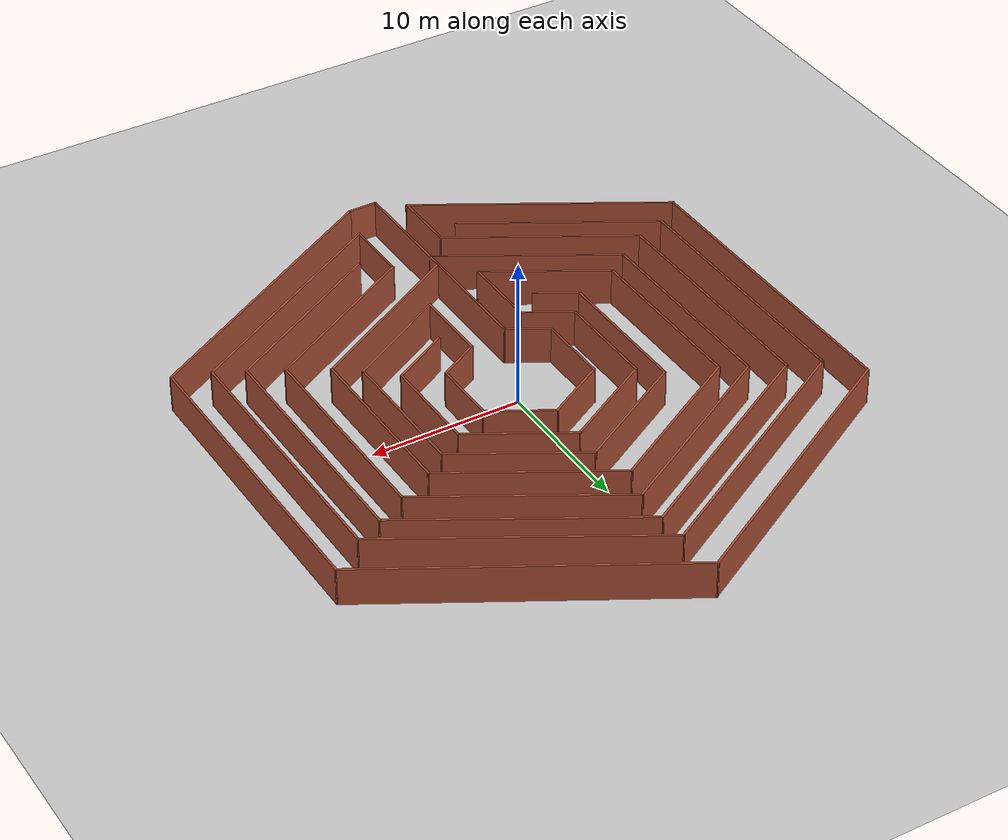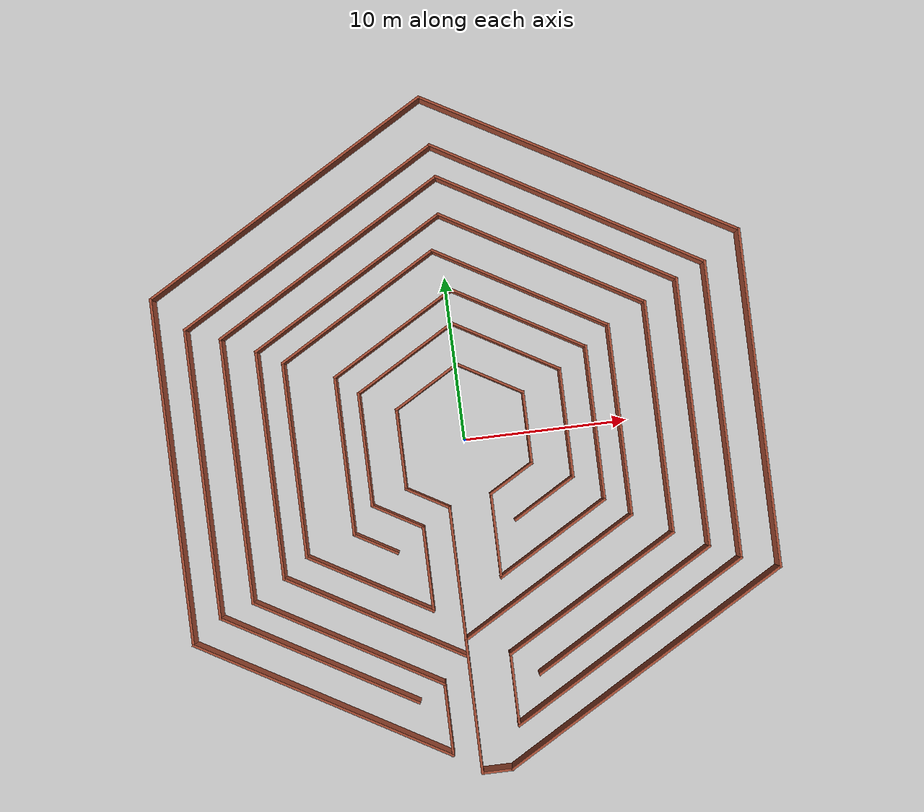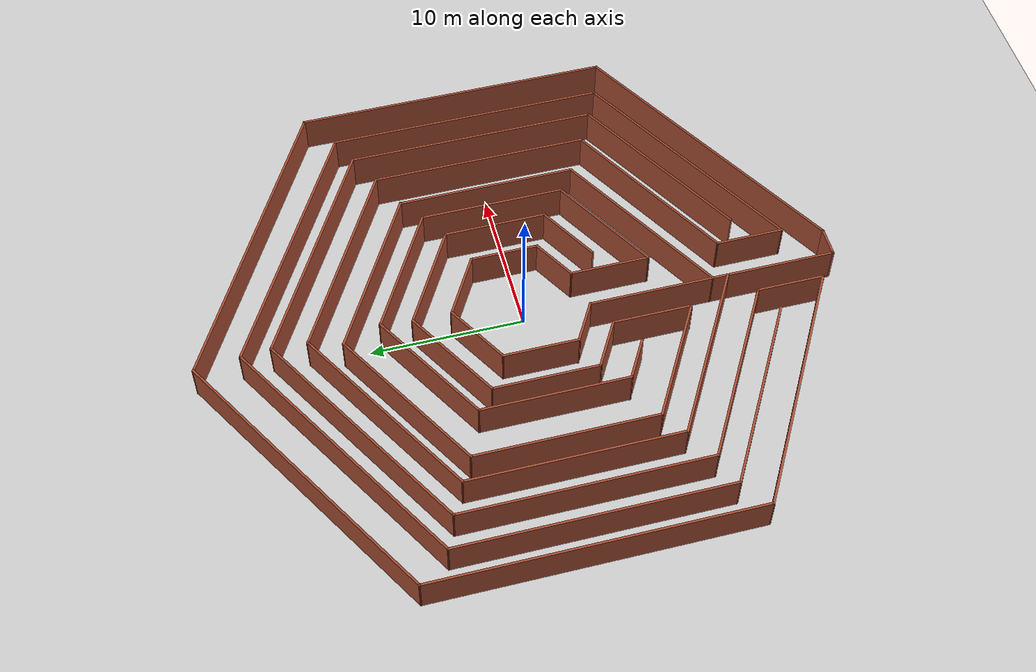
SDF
<sdf version="1.6">
 <world name="default">
  <light name="sun" type="directional">
   <pose>0 0 10 0 -0 0</pose>
   <diffuse>0.8 0.8 0.8 1</diffuse>
   <specular>0.1 0.1 0.1 1</specular>
   <attenuation>
    <range>1000</range>
    <constant>0.9</constant>
    <linear>0.01</linear>
    <quadratic>0.001</quadratic>
   </attenuation>
   <direction>-0.5 0.5 -1</direction>
  </light>
  <model name="ground_plane">
   <static>1</static>
   <link name="link">
    <collision name="collision">
     <geometry><plane><normal>0 0 1</normal><size>100 100</size></plane></geometry>
     <surface><friction><ode><mu>100</mu><mu2>50</mu2></ode></friction></surface>
    </collision>
    <visual name="visual">
     <cast_shadows>0</cast_shadows>
     <geometry><plane><normal>0 0 1</normal><size>100 100</size></plane></geometry>
     <material>
      <script><uri>file://media/materials/scripts/gazebo.material</uri><name>Gazebo/Grey</name></script>
     </material>
    </visual>
   </link>
  </model>
  <gravity>0 0 -9.8</gravity>
  <magnetic_field>6e-06 2.3e-05 -4.2e-05</magnetic_field>
  <atmosphere type="adiabatic"/>
  <physics name="default_physics" default="0" type="ode">
   <max_step_size>0.001</max_step_size>
   <real_time_factor>1</real_time_factor>
   <real_time_update_rate>1000</real_time_update_rate>
  </physics>
  <scene><ambient>0.4 0.4 0.4 1</ambient><background>0.7 0.7 0.7 1</background><shadows>1</shadows></scene>
  <spherical_coordinates>
   <surface_model>EARTH_WGS84</surface_model>
   <latitude_deg>0</latitude_deg>
   <longitude_deg>0</longitude_deg>
   <elevation>0</elevation>
   <heading_deg>0</heading_deg>
  </spherical_coordinates>
  <model name="Labryinth">
   <pose>0.119038 0.413268 0 0 -0 0</pose>
   <link name="Wall_0">
    <collision name="Wall_0_Collision">
     <geometry><box><size>20.75 0.15 2.5</size></box></geometry>
     <pose>0 0 1.25 0 -0 0</pose>
    </collision>
    <visual name="Wall_0_Visual">
     <pose>0 0 1.25 0 -0 0</pose>
     <geometry><box><size>20.75 0.15 2.5</size></box></geometry>
     <material>
      <script><uri>file://media/materials/scripts/gazebo.material</uri><name>Gazebo/Bricks</name></script>
      <ambient>1 1 1 1</ambient>
     </material>
    </visual>
    <pose>17.9508 -0.077224 0 0 0 -1.5708</pose>
   </link>
   <link name="Wall_1">
    <collision name="Wall_1_Collision">
     <geometry><box><size>20.5 0.15 2.5</size></box></geometry>
     <pose>0 0 1.25 0 -0 0</pose>
    </collision>
    <visual name="Wall_1_Visual">
     <pose>0 0 1.25 0 -0 0</pose>
     <geometry><box><size>20.5 0.15 2.5</size></box></geometry>
     <material>
      <script><uri>file://media/materials/scripts/gazebo.material</uri><name>Gazebo/Bricks</name></script>
      <ambient>1 1 1 1</ambient>
     </material>
    </visual>
    <pose>9.13896 -15.4647 0 0 0 -2.61799</pose>
   </link>
   <link name="Wall_10">
    <collision name="Wall_10_Collision">
     <geometry><box><size>5.25 0.15 2.5</size></box></geometry>
     <pose>0 0 1.25 0 -0 0</pose>
    </collision>
    <visual name="Wall_10_Visual">
     <pose>0 0 1.25 0 -0 0</pose>
     <geometry><box><size>5.25 0.15 2.5</size></box></geometry>
     <material>
      <script><uri>file://media/materials/scripts/gazebo.material</uri><name>Gazebo/Bricks</name></script>
      <ambient>1 1 1 1</ambient>
     </material>
    </visual>
    <pose>-3.2549 -7.90222 0 0 -0 1.5708</pose>
   </link>
   <link name="Wall_11">
    <collision name="Wall_11_Collision">
     <geometry><box><size>3.5 0.15 2.5</size></box></geometry>
     <pose>0 0 1.25 0 -0 0</pose>
    </collision>
    <visual name="Wall_11_Visual">
     <pose>0 0 1.25 0 -0 0</pose>
     <geometry><box><size>3.5 0.15 2.5</size></box></geometry>
     <material>
      <script><uri>file://media/materials/scripts/gazebo.material</uri><name>Gazebo/Bricks</name></script>
      <ambient>1 1 1 1</ambient>
     </material>
    </visual>
    <pose>-4.70549 -4.51472 0 0 -0 2.61799</pose>
   </link>
   <link name="Wall_12">
    <collision name="Wall_12_Collision">
     <geometry><box><size>7 0.15 2.5</size></box></geometry>
     <pose>0 0 1.25 0 -0 0</pose>
    </collision>
    <visual name="Wall_12_Visual">
     <pose>0 0 1.25 0 -0 0</pose>
     <geometry><box><size>7 0.15 2.5</size></box></geometry>
     <material>
      <script><uri>file://media/materials/scripts/gazebo.material</uri><name>Gazebo/Bricks</name></script>
      <ambient>1 1 1 1</ambient>
     </material>
    </visual>
    <pose>-6.15609 -0.252224 0 0 -0 1.5708</pose>
   </link>
   <link name="Wall_13">
    <collision name="Wall_13_Collision">
     <geometry><box><size>7.25 0.15 2.5</size></box></geometry>
     <pose>0 0 1.25 0 -0 0</pose>
    </collision>
    <visual name="Wall_13_Visual">
     <pose>0 0 1.25 0 -0 0</pose>
     <geometry><box><size>7.25 0.15 2.5</size></box></geometry>
     <material>
      <script><uri>file://media/materials/scripts/gazebo.material</uri><name>Gazebo/Bricks</name></script>
      <ambient>1 1 1 1</ambient>
     </material>
    </visual>
    <pose>-3.0817 4.94778 0 0 -0 0.523599</pose>
   </link>
   <link name="Wall_14">
    <collision name="Wall_14_Collision">
     <geometry><box><size>7.25 0.15 2.5</size></box></geometry>
     <pose>0 0 1.25 0 -0 0</pose>
    </collision>
    <visual name="Wall_14_Visual">
     <pose>0 0 1.25 0 -0 0</pose>
     <geometry><box><size>7.25 0.15 2.5</size></box></geometry>
     <material>
      <script><uri>file://media/materials/scripts/gazebo.material</uri><name>Gazebo/Bricks</name></script>
      <ambient>1 1 1 1</ambient>
     </material>
    </visual>
    <pose>3.06709 4.94778 0 0 0 -0.523599</pose>
   </link>
   <link name="Wall_15">
    <collision name="Wall_15_Collision">
     <geometry><box><size>6.75 0.15 2.5</size></box></geometry>
     <pose>0 0 1.25 0 -0 0</pose>
    </collision>
    <visual name="Wall_15_Visual">
     <pose>0 0 1.25 0 -0 0</pose>
     <geometry><box><size>6.75 0.15 2.5</size></box></geometry>
     <material>
      <script><uri>file://media/materials/scripts/gazebo.material</uri><name>Gazebo/Bricks</name></script>
      <ambient>1 1 1 1</ambient>
     </material>
    </visual>
    <pose>6.14147 -0.127224 0 0 0 -1.5708</pose>
   </link>
   <link name="Wall_16">
    <collision name="Wall_16_Collision">
     <geometry><box><size>4.5 0.15 2.5</size></box></geometry>
     <pose>0 0 1.25 0 -0 0</pose>
    </collision>
    <visual name="Wall_16_Visual">
     <pose>0 0 1.25 0 -0 0</pose>
     <geometry><box><size>4.5 0.15 2.5</size></box></geometry>
     <material>
      <script><uri>file://media/materials/scripts/gazebo.material</uri><name>Gazebo/Bricks</name></script>
      <ambient>1 1 1 1</ambient>
     </material>
    </visual>
    <pose>4.25787 -4.51472 0 0 0 -2.61799</pose>
   </link>
   <link name="Wall_18">
    <collision name="Wall_18_Collision">
     <geometry><box><size>4.5 0.15 2.5</size></box></geometry>
     <pose>0 0 1.25 0 -0 0</pose>
    </collision>
    <visual name="Wall_18_Visual">
     <pose>0 0 1.25 0 -0 0</pose>
     <geometry><box><size>4.5 0.15 2.5</size></box></geometry>
     <material>
      <script><uri>file://media/materials/scripts/gazebo.material</uri><name>Gazebo/Bricks</name></script>
      <ambient>1 1 1 1</ambient>
     </material>
    </visual>
    <pose>1.06081 -15.806 0 0 0 -1.5708</pose>
   </link>
   <link name="Wall_19">
    <collision name="Wall_19_Collision">
     <geometry><box><size>17 0.15 2.5</size></box></geometry>
     <pose>0 0 1.25 0 -0 0</pose>
    </collision>
    <visual name="Wall_19_Visual">
     <pose>0 0 1.25 0 -0 0</pose>
     <geometry><box><size>17 0.15 2.5</size></box></geometry>
     <material>
      <script><uri>file://media/materials/scripts/gazebo.material</uri><name>Gazebo/Bricks</name></script>
      <ambient>1 1 1 1</ambient>
     </material>
    </visual>
    <pose>8.35707 -13.7685 0 0 -0 0.523599</pose>
   </link>
   <link name="Wall_2">
    <collision name="Wall_2_Collision">
     <geometry><box><size>2 0.15 2.5</size></box></geometry>
     <pose>0 0 1.25 0 -0 0</pose>
    </collision>
    <visual name="Wall_2_Visual">
     <pose>0 0 1.25 0 -0 0</pose>
     <geometry><box><size>2 0.15 2.5</size></box></geometry>
     <material>
      <script><uri>file://media/materials/scripts/gazebo.material</uri><name>Gazebo/Bricks</name></script>
      <ambient>1 1 1 1</ambient>
     </material>
    </visual>
    <pose>-0.59785 -20.5522 0 0 -0 3.14159</pose>
   </link>
   <link name="Wall_20">
    <collision name="Wall_20_Collision">
     <geometry><box><size>18.25 0.15 2.5</size></box></geometry>
     <pose>0 0 1.25 0 -0 0</pose>
    </collision>
    <visual name="Wall_20_Visual">
     <pose>0 0 1.25 0 -0 0</pose>
     <geometry><box><size>18.25 0.15 2.5</size></box></geometry>
     <material>
      <script><uri>file://media/materials/scripts/gazebo.material</uri><name>Gazebo/Bricks</name></script>
      <ambient>1 1 1 1</ambient>
     </material>
    </visual>
    <pose>15.6533 -0.506 0 0 -0 1.5708</pose>
   </link>
   <link name="Wall_21">
    <collision name="Wall_21_Collision">
     <geometry><box><size>18.25 0.15 2.5</size></box></geometry>
     <pose>0 0 1.25 0 -0 0</pose>
    </collision>
    <visual name="Wall_21_Visual">
     <pose>0 0 1.25 0 -0 0</pose>
     <geometry><box><size>18.25 0.15 2.5</size></box></geometry>
     <material>
      <script><uri>file://media/materials/scripts/gazebo.material</uri><name>Gazebo/Bricks</name></script>
      <ambient>1 1 1 1</ambient>
     </material>
    </visual>
    <pose>7.8158 13.069 0 0 -0 2.61799</pose>
   </link>
   <link name="Wall_22">
    <collision name="Wall_22_Collision">
     <geometry><box><size>18.75 0.15 2.5</size></box></geometry>
     <pose>0 0 1.25 0 -0 0</pose>
    </collision>
    <visual name="Wall_22_Visual">
     <pose>0 0 1.25 0 -0 0</pose>
     <geometry><box><size>18.75 0.15 2.5</size></box></geometry>
     <material>
      <script><uri>file://media/materials/scripts/gazebo.material</uri><name>Gazebo/Bricks</name></script>
      <ambient>1 1 1 1</ambient>
     </material>
    </visual>
    <pose>-8.07576 12.944 0 0 0 -2.61799</pose>
   </link>
   <link name="Wall_23">
    <collision name="Wall_23_Collision">
     <geometry><box><size>17.75 0.15 2.5</size></box></geometry>
     <pose>0 0 1.25 0 -0 0</pose>
    </collision>
    <visual name="Wall_23_Visual">
     <pose>0 0 1.25 0 -0 0</pose>
     <geometry><box><size>17.75 0.15 2.5</size></box></geometry>
     <material>
      <script><uri>file://media/materials/scripts/gazebo.material</uri><name>Gazebo/Bricks</name></script>
      <ambient>1 1 1 1</ambient>
     </material>
    </visual>
    <pose>-16.1298 -0.506 0 0 0 -1.5708</pose>
   </link>
   <link name="Wall_24">
    <collision name="Wall_24_Collision">
     <geometry><box><size>13.25 0.15 2.5</size></box></geometry>
     <pose>0 0 1.25 0 -0 0</pose>
    </collision>
    <visual name="Wall_24_Visual">
     <pose>0 0 1.25 0 -0 0</pose>
     <geometry><box><size>13.25 0.15 2.5</size></box></geometry>
     <material>
      <script><uri>file://media/materials/scripts/gazebo.material</uri><name>Gazebo/Bricks</name></script>
      <ambient>1 1 1 1</ambient>
     </material>
    </visual>
    <pose>-10.4573 -12.581 0 0 0 -0.523599</pose>
   </link>
   <link name="Wall_26">
    <collision name="Wall_26_Collision">
     <geometry><box><size>12.465 0.15 2.5</size></box></geometry>
     <pose>0 0 1.25 0 -0 0</pose>
    </collision>
    <visual name="Wall_26_Visual">
     <pose>0 0 1.25 0 -0 0</pose>
     <geometry><box><size>12.465 0.15 2.5</size></box></geometry>
     <material>
      <script><uri>file://media/materials/scripts/gazebo.material</uri><name>Gazebo/Bricks</name></script>
      <ambient>1 1 1 1</ambient>
     </material>
    </visual>
    <pose>6.40851 -10.5787 0 0 -0 0.518651</pose>
   </link>
   <link name="Wall_3">
    <collision name="Wall_3_Collision">
     <geometry><box><size>8.25 0.15 2.5</size></box></geometry>
     <pose>0 0 1.25 0 -0 0</pose>
    </collision>
    <visual name="Wall_3_Visual">
     <pose>0 0 1.25 0 -0 0</pose>
     <geometry><box><size>8.25 0.15 2.5</size></box></geometry>
     <material>
      <script><uri>file://media/materials/scripts/gazebo.material</uri><name>Gazebo/Bricks</name></script>
      <ambient>1 1 1 1</ambient>
     </material>
    </visual>
    <pose>-1.52285 -16.5022 0 0 -0 1.5708</pose>
   </link>
   <link name="Wall_30">
    <collision name="Wall_30_Collision">
     <geometry><box><size>14.25 0.15 2.5</size></box></geometry>
     <pose>0 0 1.25 0 -0 0</pose>
    </collision>
    <visual name="Wall_30_Visual">
     <pose>0 0 1.25 0 -0 0</pose>
     <geometry><box><size>14.25 0.15 2.5</size></box></geometry>
     <material>
      <script><uri>file://media/materials/scripts/gazebo.material</uri><name>Gazebo/Bricks</name></script>
      <ambient>1 1 1 1</ambient>
     </material>
    </visual>
    <pose>11.7562 -0.476358 0 0 -0 1.5708</pose>
   </link>
   <link name="Wall_32">
    <collision name="Wall_32_Collision">
     <geometry><box><size>13.75 0.15 2.5</size></box></geometry>
     <pose>0 0 1.25 0 -0 0</pose>
    </collision>
    <visual name="Wall_32_Visual">
     <pose>0 0 1.25 0 -0 0</pose>
     <geometry><box><size>13.75 0.15 2.5</size></box></geometry>
     <material>
      <script><uri>file://media/materials/scripts/gazebo.material</uri><name>Gazebo/Bricks</name></script>
      <ambient>1 1 1 1</ambient>
     </material>
    </visual>
    <pose>5.86725 9.97364 0 0 -0 2.61799</pose>
   </link>
   <link name="Wall_33">
    <collision name="Wall_33_Collision">
     <geometry><box><size>14 0.15 2.5</size></box></geometry>
     <pose>0 0 1.25 0 -0 0</pose>
    </collision>
    <visual name="Wall_33_Visual">
     <pose>0 0 1.25 0 -0 0</pose>
     <geometry><box><size>14 0.15 2.5</size></box></geometry>
     <material>
      <script><uri>file://media/materials/scripts/gazebo.material</uri><name>Gazebo/Bricks</name></script>
      <ambient>1 1 1 1</ambient>
     </material>
    </visual>
    <pose>-6.01895 9.91114 0 0 0 -2.61799</pose>
   </link>
   <link name="Wall_34">
    <collision name="Wall_34_Collision">
     <geometry><box><size>14 0.15 2.5</size></box></geometry>
     <pose>0 0 1.25 0 -0 0</pose>
    </collision>
    <visual name="Wall_34_Visual">
     <pose>0 0 1.25 0 -0 0</pose>
     <geometry><box><size>14 0.15 2.5</size></box></geometry>
     <material>
      <script><uri>file://media/materials/scripts/gazebo.material</uri><name>Gazebo/Bricks</name></script>
      <ambient>1 1 1 1</ambient>
     </material>
    </visual>
    <pose>-12.0162 -0.476358 0 0 0 -1.5708</pose>
   </link>
   <link name="Wall_36">
    <collision name="Wall_36_Collision">
     <geometry><box><size>12.25 0.15 2.5</size></box></geometry>
     <pose>0 0 1.25 0 -0 0</pose>
    </collision>
    <visual name="Wall_36_Visual">
     <pose>0 0 1.25 0 -0 0</pose>
     <geometry><box><size>12.25 0.15 2.5</size></box></geometry>
     <material>
      <script><uri>file://media/materials/scripts/gazebo.material</uri><name>Gazebo/Bricks</name></script>
      <ambient>1 1 1 1</ambient>
     </material>
    </visual>
    <pose>-6.77672 -10.4264 0 0 0 -0.523599</pose>
   </link>
   <link name="Wall_38">
    <collision name="Wall_38_Collision">
     <geometry><box><size>8.25 0.15 2.5</size></box></geometry>
     <pose>0 0 1.25 0 -0 0</pose>
    </collision>
    <visual name="Wall_38_Visual">
     <pose>0 0 1.25 0 -0 0</pose>
     <geometry><box><size>8.25 0.15 2.5</size></box></geometry>
     <material>
      <script><uri>file://media/materials/scripts/gazebo.material</uri><name>Gazebo/Bricks</name></script>
      <ambient>1 1 1 1</ambient>
     </material>
    </visual>
    <pose>-1.52285 -8.40222 0 0 -0 1.5708</pose>
   </link>
   <link name="Wall_39">
    <collision name="Wall_39_Collision">
     <geometry><box><size>3 0.15 2.5</size></box></geometry>
     <pose>0 0 1.25 0 -0 0</pose>
    </collision>
    <visual name="Wall_39_Visual">
     <pose>0 0 1.25 0 -0 0</pose>
     <geometry><box><size>3 0.15 2.5</size></box></geometry>
     <material>
      <script><uri>file://media/materials/scripts/gazebo.material</uri><name>Gazebo/Bricks</name></script>
      <ambient>1 1 1 1</ambient>
     </material>
    </visual>
    <pose>-2.75694 -3.63972 0 0 -0 2.61799</pose>
   </link>
   <link name="Wall_4">
    <collision name="Wall_4_Collision">
     <geometry><box><size>12.75 0.15 2.5</size></box></geometry>
     <pose>0 0 1.25 0 -0 0</pose>
    </collision>
    <visual name="Wall_4_Visual">
     <pose>0 0 1.25 0 -0 0</pose>
     <geometry><box><size>12.75 0.15 2.5</size></box></geometry>
     <material>
      <script><uri>file://media/materials/scripts/gazebo.material</uri><name>Gazebo/Bricks</name></script>
      <ambient>1 1 1 1</ambient>
     </material>
    </visual>
    <pose>3.93311 -9.30222 0 0 -0 0.523599</pose>
   </link>
   <link name="Wall_40">
    <collision name="Wall_40_Collision">
     <geometry><box><size>5 0.15 2.5</size></box></geometry>
     <pose>0 0 1.25 0 -0 0</pose>
    </collision>
    <visual name="Wall_40_Visual">
     <pose>0 0 1.25 0 -0 0</pose>
     <geometry><box><size>5 0.15 2.5</size></box></geometry>
     <material>
      <script><uri>file://media/materials/scripts/gazebo.material</uri><name>Gazebo/Bricks</name></script>
      <ambient>1 1 1 1</ambient>
     </material>
    </visual>
    <pose>-3.99102 -0.502224 0 0 -0 1.5708</pose>
   </link>
   <link name="Wall_41">
    <collision name="Wall_41_Collision">
     <geometry><box><size>4.75 0.15 2.5</size></box></geometry>
     <pose>0 0 1.25 0 -0 0</pose>
    </collision>
    <visual name="Wall_41_Visual">
     <pose>0 0 1.25 0 -0 0</pose>
     <geometry><box><size>4.75 0.15 2.5</size></box></geometry>
     <material>
      <script><uri>file://media/materials/scripts/gazebo.material</uri><name>Gazebo/Bricks</name></script>
      <ambient>1 1 1 1</ambient>
     </material>
    </visual>
    <pose>-1.99916 3.07278 0 0 -0 0.523599</pose>
   </link>
   <link name="Wall_42">
    <collision name="Wall_42_Collision">
     <geometry><box><size>4.5 0.15 2.5</size></box></geometry>
     <pose>0 0 1.25 0 -0 0</pose>
    </collision>
    <visual name="Wall_42_Visual">
     <pose>0 0 1.25 0 -0 0</pose>
     <geometry><box><size>4.5 0.15 2.5</size></box></geometry>
     <material>
      <script><uri>file://media/materials/scripts/gazebo.material</uri><name>Gazebo/Bricks</name></script>
      <ambient>1 1 1 1</ambient>
     </material>
    </visual>
    <pose>1.8763 3.13528 0 0 0 -0.523599</pose>
   </link>
   <link name="Wall_43">
    <collision name="Wall_43_Collision">
     <geometry><box><size>4.5 0.15 2.5</size></box></geometry>
     <pose>0 0 1.25 0 -0 0</pose>
    </collision>
    <visual name="Wall_43_Visual">
     <pose>0 0 1.25 0 -0 0</pose>
     <geometry><box><size>4.5 0.15 2.5</size></box></geometry>
     <material>
      <script><uri>file://media/materials/scripts/gazebo.material</uri><name>Gazebo/Bricks</name></script>
      <ambient>1 1 1 1</ambient>
     </material>
    </visual>
    <pose>3.7599 -0.127224 0 0 0 -1.5708</pose>
   </link>
   <link name="Wall_44">
    <collision name="Wall_44_Collision">
     <geometry><box><size>3.25 0.15 2.5</size></box></geometry>
     <pose>0 0 1.25 0 -0 0</pose>
    </collision>
    <visual name="Wall_44_Visual">
     <pose>0 0 1.25 0 -0 0</pose>
     <geometry><box><size>3.25 0.15 2.5</size></box></geometry>
     <material>
      <script><uri>file://media/materials/scripts/gazebo.material</uri><name>Gazebo/Bricks</name></script>
      <ambient>1 1 1 1</ambient>
     </material>
    </visual>
    <pose>2.41757 -3.07722 0 0 0 -2.61799</pose>
   </link>
   <link name="Wall_45">
    <collision name="Wall_45_Collision">
     <geometry><box><size>5.25 0.15 2.5</size></box></geometry>
     <pose>0 0 1.25 0 -0 0</pose>
    </collision>
    <visual name="Wall_45_Visual">
     <pose>0 0 1.25 0 -0 0</pose>
     <geometry><box><size>5.25 0.15 2.5</size></box></geometry>
     <material>
      <script><uri>file://media/materials/scripts/gazebo.material</uri><name>Gazebo/Bricks</name></script>
      <ambient>1 1 1 1</ambient>
     </material>
    </visual>
    <pose>1.07523 -6.40222 0 0 0 -1.5708</pose>
   </link>
   <link name="Wall_46">
    <collision name="Wall_46_Collision">
     <geometry><box><size>8 0.15 2.5</size></box></geometry>
     <pose>0 0 1.25 0 -0 0</pose>
    </collision>
    <visual name="Wall_46_Visual">
     <pose>0 0 1.25 0 -0 0</pose>
     <geometry><box><size>8 0.15 2.5</size></box></geometry>
     <material>
      <script><uri>file://media/materials/scripts/gazebo.material</uri><name>Gazebo/Bricks</name></script>
      <ambient>1 1 1 1</ambient>
     </material>
    </visual>
    <pose>4.47438 -6.98972 0 0 -0 0.523599</pose>
   </link>
   <link name="Wall_47">
    <collision name="Wall_47_Collision">
     <geometry><box><size>9.5 0.15 2.5</size></box></geometry>
     <pose>0 0 1.25 0 -0 0</pose>
    </collision>
    <visual name="Wall_47_Visual">
     <pose>0 0 1.25 0 -0 0</pose>
     <geometry><box><size>9.5 0.15 2.5</size></box></geometry>
     <material>
      <script><uri>file://media/materials/scripts/gazebo.material</uri><name>Gazebo/Bricks</name></script>
      <ambient>1 1 1 1</ambient>
     </material>
    </visual>
    <pose>7.87353 -0.352224 0 0 -0 1.5708</pose>
   </link>
   <link name="Wall_48">
    <collision name="Wall_48_Collision">
     <geometry><box><size>9 0.15 2.5</size></box></geometry>
     <pose>0 0 1.25 0 -0 0</pose>
    </collision>
    <visual name="Wall_48_Visual">
     <pose>0 0 1.25 0 -0 0</pose>
     <geometry><box><size>9 0.15 2.5</size></box></geometry>
     <material>
      <script><uri>file://media/materials/scripts/gazebo.material</uri><name>Gazebo/Bricks</name></script>
      <ambient>1 1 1 1</ambient>
     </material>
    </visual>
    <pose>4.04136 6.53528 0 0 -0 2.61799</pose>
   </link>
   <link name="Wall_49">
    <collision name="Wall_49_Collision">
     <geometry><box><size>9 0.15 2.5</size></box></geometry>
     <pose>0 0 1.25 0 -0 0</pose>
    </collision>
    <visual name="Wall_49_Visual">
     <pose>0 0 1.25 0 -0 0</pose>
     <geometry><box><size>9 0.15 2.5</size></box></geometry>
     <material>
      <script><uri>file://media/materials/scripts/gazebo.material</uri><name>Gazebo/Bricks</name></script>
      <ambient>1 1 1 1</ambient>
     </material>
    </visual>
    <pose>-3.62296 6.53528 0 0 0 -2.61799</pose>
   </link>
   <link name="Wall_5">
    <collision name="Wall_5_Collision">
     <geometry><box><size>11.75 0.15 2.5</size></box></geometry>
     <pose>0 0 1.25 0 -0 0</pose>
    </collision>
    <visual name="Wall_5_Visual">
     <pose>0 0 1.25 0 -0 0</pose>
     <geometry><box><size>11.75 0.15 2.5</size></box></geometry>
     <material>
      <script><uri>file://media/materials/scripts/gazebo.material</uri><name>Gazebo/Bricks</name></script>
      <ambient>1 1 1 1</ambient>
     </material>
    </visual>
    <pose>9.38907 -0.352224 0 0 -0 1.5708</pose>
   </link>
   <link name="Wall_50">
    <collision name="Wall_50_Collision">
     <geometry><box><size>9.75 0.15 2.5</size></box></geometry>
     <pose>0 0 1.25 0 -0 0</pose>
    </collision>
    <visual name="Wall_50_Visual">
     <pose>0 0 1.25 0 -0 0</pose>
     <geometry><box><size>9.75 0.15 2.5</size></box></geometry>
     <material>
      <script><uri>file://media/materials/scripts/gazebo.material</uri><name>Gazebo/Bricks</name></script>
      <ambient>1 1 1 1</ambient>
     </material>
    </visual>
    <pose>-7.45512 -0.477224 0 0 0 -1.5708</pose>
   </link>
   <link name="Wall_51">
    <collision name="Wall_51_Collision">
     <geometry><box><size>3 0.15 2.5</size></box></geometry>
     <pose>0 0 1.25 0 -0 0</pose>
    </collision>
    <visual name="Wall_51_Visual">
     <pose>0 0 1.25 0 -0 0</pose>
     <geometry><box><size>3 0.15 2.5</size></box></geometry>
     <material>
      <script><uri>file://media/materials/scripts/gazebo.material</uri><name>Gazebo/Bricks</name></script>
      <ambient>1 1 1 1</ambient>
     </material>
    </visual>
    <pose>-6.22104 -5.98972 0 0 0 -0.523599</pose>
   </link>
   <link name="Wall_53">
    <collision name="Wall_53_Collision">
     <geometry><box><size>13 0.15 2.5</size></box></geometry>
     <pose>0 0 1.25 0 -0 0</pose>
    </collision>
    <visual name="Wall_53_Visual">
     <pose>0 0 1.25 0 -0 0</pose>
     <geometry><box><size>13 0.15 2.5</size></box></geometry>
     <material>
      <script><uri>file://media/materials/scripts/gazebo.material</uri><name>Gazebo/Bricks</name></script>
      <ambient>1 1 1 1</ambient>
     </material>
    </visual>
    <pose>8.26815 -11.8353 0 0 -0 0.523599</pose>
   </link>
   <link name="Wall_54">
    <collision name="Wall_54_Collision">
     <geometry><box><size>16.5 0.15 2.5</size></box></geometry>
     <pose>0 0 1.25 0 -0 0</pose>
    </collision>
    <visual name="Wall_54_Visual">
     <pose>0 0 1.25 0 -0 0</pose>
     <geometry><box><size>16.5 0.15 2.5</size></box></geometry>
     <material>
      <script><uri>file://media/materials/scripts/gazebo.material</uri><name>Gazebo/Bricks</name></script>
      <ambient>1 1 1 1</ambient>
     </material>
    </visual>
    <pose>13.8324 -0.447776 0 0 -0 1.5708</pose>
   </link>
   <link name="Wall_56">
    <collision name="Wall_56_Collision">
     <geometry><box><size>16 0.15 2.5</size></box></geometry>
     <pose>0 0 1.25 0 -0 0</pose>
    </collision>
    <visual name="Wall_56_Visual">
     <pose>0 0 1.25 0 -0 0</pose>
     <geometry><box><size>16 0.15 2.5</size></box></geometry>
     <material>
      <script><uri>file://media/materials/scripts/gazebo.material</uri><name>Gazebo/Bricks</name></script>
      <ambient>1 1 1 1</ambient>
     </material>
    </visual>
    <pose>6.96911 11.6897 0 0 -0 2.61799</pose>
   </link>
   <link name="Wall_57">
    <collision name="Wall_57_Collision">
     <geometry><box><size>16.5 0.15 2.5</size></box></geometry>
     <pose>0 0 1.25 0 -0 0</pose>
    </collision>
    <visual name="Wall_57_Visual">
     <pose>0 0 1.25 0 -0 0</pose>
     <geometry><box><size>16.5 0.15 2.5</size></box></geometry>
     <material>
      <script><uri>file://media/materials/scripts/gazebo.material</uri><name>Gazebo/Bricks</name></script>
      <ambient>1 1 1 1</ambient>
     </material>
    </visual>
    <pose>-6.9739 11.5647 0 0 0 -2.61799</pose>
   </link>
   <link name="Wall_59">
    <collision name="Wall_59_Collision">
     <geometry><box><size>16.25 0.15 2.5</size></box></geometry>
     <pose>0 0 1.25 0 -0 0</pose>
    </collision>
    <visual name="Wall_59_Visual">
     <pose>0 0 1.25 0 -0 0</pose>
     <geometry><box><size>16.25 0.15 2.5</size></box></geometry>
     <material>
      <script><uri>file://media/materials/scripts/gazebo.material</uri><name>Gazebo/Bricks</name></script>
      <ambient>1 1 1 1</ambient>
     </material>
    </visual>
    <pose>-14.0537 -0.572776 0 0 0 -1.5708</pose>
   </link>
   <link name="Wall_6">
    <collision name="Wall_6_Collision">
     <geometry><box><size>11.75 0.15 2.5</size></box></geometry>
     <pose>0 0 1.25 0 -0 0</pose>
    </collision>
    <visual name="Wall_6_Visual">
     <pose>0 0 1.25 0 -0 0</pose>
     <geometry><box><size>11.75 0.15 2.5</size></box></geometry>
     <material>
      <script><uri>file://media/materials/scripts/gazebo.material</uri><name>Gazebo/Bricks</name></script>
      <ambient>1 1 1 1</ambient>
     </material>
    </visual>
    <pose>4.36612 8.34778 0 0 -0 2.61799</pose>
   </link>
   <link name="Wall_61">
    <collision name="Wall_61_Collision">
     <geometry><box><size>12.75 0.15 2.5</size></box></geometry>
     <pose>0 0 1.25 0 -0 0</pose>
    </collision>
    <visual name="Wall_61_Visual">
     <pose>0 0 1.25 0 -0 0</pose>
     <geometry><box><size>12.75 0.15 2.5</size></box></geometry>
     <material>
      <script><uri>file://media/materials/scripts/gazebo.material</uri><name>Gazebo/Bricks</name></script>
      <ambient>1 1 1 1</ambient>
     </material>
    </visual>
    <pose>-8.59769 -11.7728 0 0 0 -0.523599</pose>
   </link>
   <link name="Wall_62">
    <collision name="Wall_62_Collision">
     <geometry><box><size>4.5 0.15 2.5</size></box></geometry>
     <pose>0 0 1.25 0 -0 0</pose>
    </collision>
    <visual name="Wall_62_Visual">
     <pose>0 0 1.25 0 -0 0</pose>
     <geometry><box><size>4.5 0.15 2.5</size></box></geometry>
     <material>
      <script><uri>file://media/materials/scripts/gazebo.material</uri><name>Gazebo/Bricks</name></script>
      <ambient>1 1 1 1</ambient>
     </material>
    </visual>
    <pose>-3.14173 -17.0978 0 0 0 -1.5708</pose>
   </link>
   <link name="Wall_63">
    <collision name="Wall_63_Collision">
     <geometry><box><size>17.25 0.15 2.5</size></box></geometry>
     <pose>0 0 1.25 0 -0 0</pose>
    </collision>
    <visual name="Wall_63_Visual">
     <pose>0 0 1.25 0 -0 0</pose>
     <geometry><box><size>17.25 0.15 2.5</size></box></geometry>
     <material>
      <script><uri>file://media/materials/scripts/gazebo.material</uri><name>Gazebo/Bricks</name></script>
      <ambient>1 1 1 1</ambient>
     </material>
    </visual>
    <pose>-10.5463 -14.9978 0 0 -0 2.61799</pose>
   </link>
   <link name="Wall_64">
    <collision name="Wall_64_Collision">
     <geometry><box><size>21.25 0.15 2.5</size></box></geometry>
     <pose>0 0 1.25 0 -0 0</pose>
    </collision>
    <visual name="Wall_64_Visual">
     <pose>0 0 1.25 0 -0 0</pose>
     <geometry><box><size>21.25 0.15 2.5</size></box></geometry>
     <material>
      <script><uri>file://media/materials/scripts/gazebo.material</uri><name>Gazebo/Bricks</name></script>
      <ambient>1 1 1 1</ambient>
     </material>
    </visual>
    <pose>-17.9508 -0.172776 0 0 -0 1.5708</pose>
   </link>
   <link name="Wall_66">
    <collision name="Wall_66_Collision">
     <geometry><box><size>20.5 0.15 2.5</size></box></geometry>
     <pose>0 0 1.25 0 -0 0</pose>
    </collision>
    <visual name="Wall_66_Visual">
     <pose>0 0 1.25 0 -0 0</pose>
     <geometry><box><size>20.5 0.15 2.5</size></box></geometry>
     <material>
      <script><uri>file://media/materials/scripts/gazebo.material</uri><name>Gazebo/Bricks</name></script>
      <ambient>1 1 1 1</ambient>
     </material>
    </visual>
    <pose>-9.13896 15.4647 0 0 -0 0.523599</pose>
   </link>
   <link name="Wall_67">
    <collision name="Wall_67_Collision">
     <geometry><box><size>21.1448 0.15 2.5</size></box></geometry>
     <pose>0 0 1.25 0 -0 0</pose>
    </collision>
    <visual name="Wall_67_Visual">
     <pose>0 0 1.25 0 -0 0</pose>
     <geometry><box><size>21.1448 0.15 2.5</size></box></geometry>
     <material>
      <script><uri>file://media/materials/scripts/gazebo.material</uri><name>Gazebo/Bricks</name></script>
      <ambient>1 1 1 1</ambient>
     </material>
    </visual>
    <pose>8.81181 15.3875 0 0 0 -0.514387</pose>
   </link>
   <link name="Wall_7">
    <collision name="Wall_7_Collision">
     <geometry><box><size>11.5 0.15 2.5</size></box></geometry>
     <pose>0 0 1.25 0 -0 0</pose>
    </collision>
    <visual name="Wall_7_Visual">
     <pose>0 0 1.25 0 -0 0</pose>
     <geometry><box><size>11.5 0.15 2.5</size></box></geometry>
     <material>
      <script><uri>file://media/materials/scripts/gazebo.material</uri><name>Gazebo/Bricks</name></script>
      <ambient>1 1 1 1</ambient>
     </material>
    </visual>
    <pose>-5.57152 8.41028 0 0 0 -2.61799</pose>
   </link>
   <link name="Wall_8">
    <collision name="Wall_8_Collision">
     <geometry><box><size>12 0.15 2.5</size></box></geometry>
     <pose>0 0 1.25 0 -0 0</pose>
    </collision>
    <visual name="Wall_8_Visual">
     <pose>0 0 1.25 0 -0 0</pose>
     <geometry><box><size>12 0.15 2.5</size></box></geometry>
     <material>
      <script><uri>file://media/materials/scripts/gazebo.material</uri><name>Gazebo/Bricks</name></script>
      <ambient>1 1 1 1</ambient>
     </material>
    </visual>
    <pose>-10.4862 -0.352224 0 0 0 -1.5708</pose>
   </link>
   <link name="Wall_9">
    <collision name="Wall_9_Collision">
     <geometry><box><size>8.5 0.15 2.5</size></box></geometry>
     <pose>0 0 1.25 0 -0 0</pose>
    </collision>
    <visual name="Wall_9_Visual">
     <pose>0 0 1.25 0 -0 0</pose>
     <geometry><box><size>8.5 0.15 2.5</size></box></geometry>
     <material>
      <script><uri>file://media/materials/scripts/gazebo.material</uri><name>Gazebo/Bricks</name></script>
      <ambient>1 1 1 1</ambient>
     </material>
    </visual>
    <pose>-6.87056 -8.36472 0 0 0 -0.523599</pose>
   </link>
   <static>1</static>
  </model>
 </world>
</sdf>
